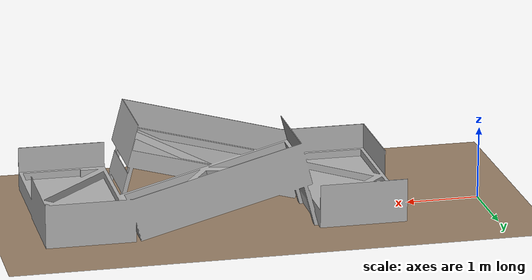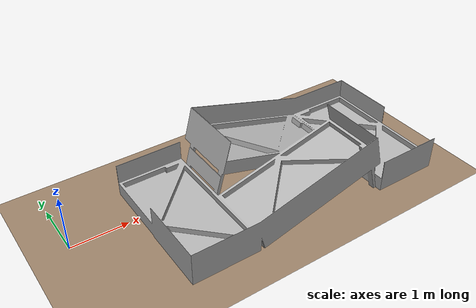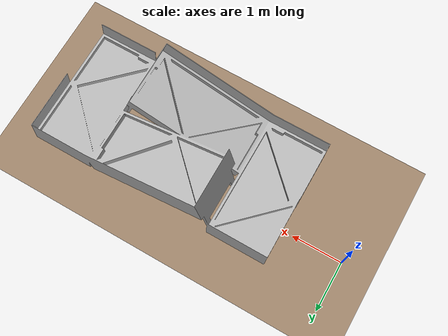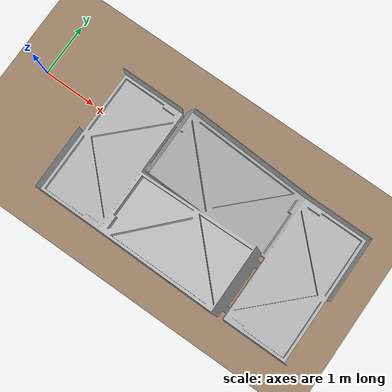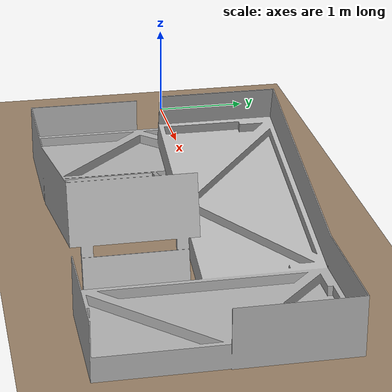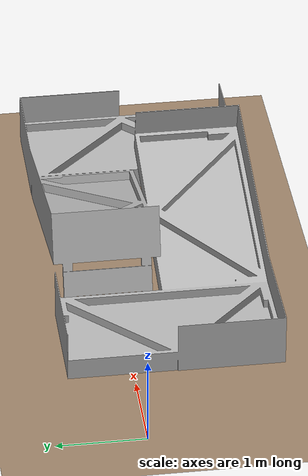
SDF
<?xml version="1.0"?>
<!--
  Sloped KRails arena
-->
<sdf version="1.6">
  <world name="sloped_krails">
    <physics name="1ms" type="ignored">
      <max_step_size>0.01</max_step_size>
      <real_time_factor>1.0</real_time_factor>
    </physics>
    <plugin filename="gz-sim-physics-system"
            name="gz::sim::systems::Physics"/>
    <plugin filename="gz-sim-user-commands-system"
            name="gz::sim::systems::UserCommands"/>
    <plugin filename="gz-sim-scene-broadcaster-system"
            name="gz::sim::systems::SceneBroadcaster"/>
    <plugin filename="gz-sim-sensors-system"
            name="gz::sim::systems::Sensors">
      <render_engine>ogre2</render_engine>
    </plugin>
    <plugin filename="gz-sim-imu-system"
            name="gz::sim::systems::Imu"/>
    <plugin filename="gz-sim-contact-system"
            name="gz::sim::systems::Contact"/>

    <light type="directional" name="sun">
      <cast_shadows>true</cast_shadows>
      <pose>5 5 10 0 0 0</pose>
      <diffuse>0.8 0.8 0.8 1</diffuse>
      <specular>0.2 0.2 0.2 1</specular>
      <attenuation>
        <range>1000</range>
        <constant>0.9</constant>
        <linear>0.01</linear>
        <quadratic>0.001</quadratic>
      </attenuation>
      <direction>-0.5 0.1 -0.9</direction>
    </light>
    <!-- Ground plane: the KRails STL only contains rail structures, not
         the floor. A separate ground plane is required so the robot has
         a surface to drive on between and around the rails. -->
    <model name="ground_plane">
      <static>true</static>
      <link name="link">
        <collision name="collision">
          <geometry>
            <plane>
              <normal>0 0 1</normal>
              <size>20 20</size>
            </plane>
          </geometry>
        </collision>
        <visual name="visual">
          <geometry>
            <plane>
              <normal>0 0 1</normal>
              <size>20 20</size>
            </plane>
          </geometry>
          <material>
            <ambient>0.6 0.5 0.4 1</ambient>
            <diffuse>0.6 0.5 0.4 1</diffuse>
          </material>
        </visual>
      </link>
    </model>

    <model name="sloped_krails_arena">
      <static>true</static>
      <!-- STL exported from SolidWorks -->
      <pose>3.0 1.0 0 -1.5708 0 -1.5708</pose>
      <link name="base_link">
        <collision name="collision">
          <geometry>
            <mesh>
              <uri>package://2_Sloped_KRails/meshes/base_link.STL</uri>
              <scale>1 1 1</scale>
            </mesh>
          </geometry>
        </collision>
        <visual name="visual">
          <geometry>
            <mesh>
              <uri>package://2_Sloped_KRails/meshes/base_link.STL</uri>
              <scale>1 1 1</scale>
            </mesh>
          </geometry>
          <material>
            <ambient>0.7 0.7 0.7 1</ambient>
            <diffuse>0.7 0.7 0.7 1</diffuse>
            <specular>0.1 0.1 0.1 1</specular>
          </material>
        </visual>
      </link>
    </model>

  </world>
</sdf>
